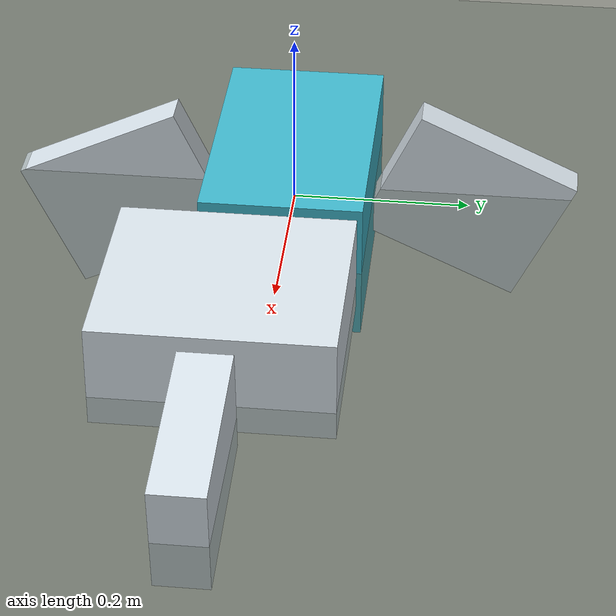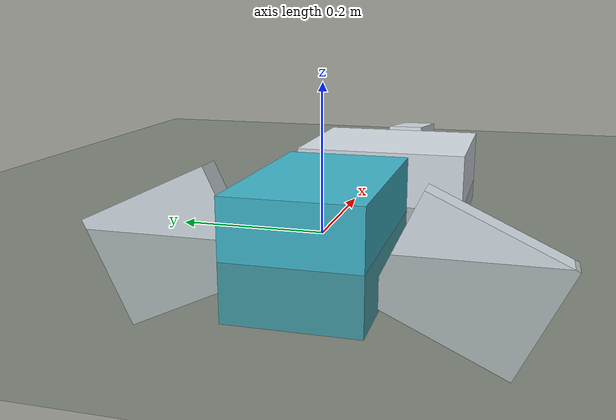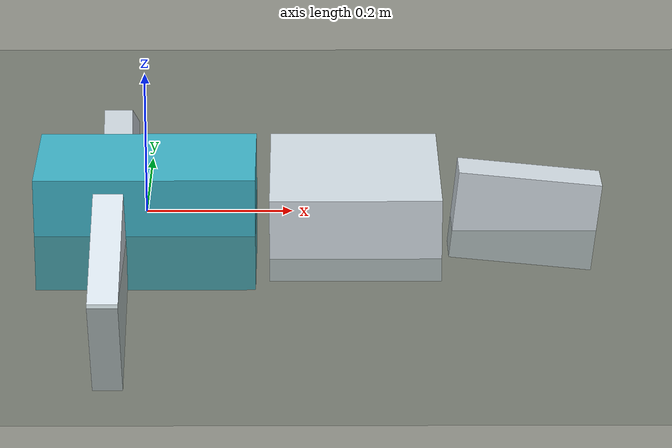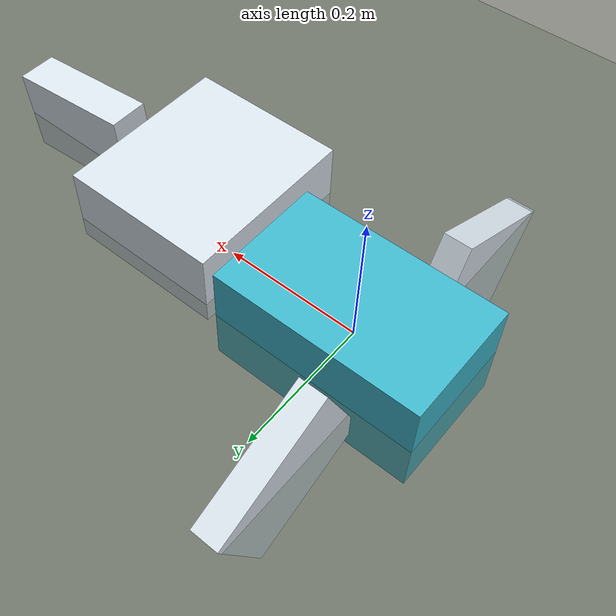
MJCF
<mujoco model="criatura">
  <compiler angle="degree" autolimits="true"/>
  <option timestep="0.002083" gravity="0 0 -9.81" integrator="implicitfast"/>
  <default>
    <geom type="box" density="300.0" rgba="0.85 0.89 0.92 1"/>
    <joint type="hinge"/>
    <motor ctrlrange="-1 1"/>
  </default>
  <worldbody>
    <geom name="suelo" type="plane" size="0 0 1" friction="1 0.005 0.0001" rgba="0.3 0.35 0.3 1"/>
    <body name="p0_n0" pos="0.00000 0.00000 0.00000" quat="1.000000 0.000000 0.000000 0.000000">
      <freejoint name="raiz"/>
      <geom name="g_p0_n0" size="0.15000 0.09000 0.08000" rgba="0.25 0.72 0.8 1"/>
      <body name="p1_n1" pos="0.28494 -0.04208 0.02418" quat="1.000000 0.000000 0.000000 0.000000">
        <joint name="p1_n1_j0" axis="0.0000 0.0000 1.0000" pos="-0.13494 0 0" range="-60.00 60.00" damping="0.4320"/>
        <geom name="g_p1_n1" size="0.11494 0.12778 0.05747"/>
        <body name="p2_n4" pos="0.23203 0.00000 -0.01198" quat="0.998701 0.000000 0.050947 0.000000">
          <joint name="p2_n4_j0" axis="1.0000 0.0000 0.0000" pos="-0.11770 0 0" range="-60.00 60.00" damping="0.1067"/>
          <joint name="p2_n4_j1" axis="0.0000 1.0000 0.0000" pos="-0.11770 0 0" range="-60.00 60.00" damping="0.1067"/>
          <joint name="p2_n4_j2" axis="0.0000 0.0000 1.0000" pos="-0.11770 0 0" range="-60.00 60.00" damping="0.1067"/>
          <geom name="g_p2_n4" size="0.09770 0.02872 0.06193"/>
        </body>
      </body>
      <body name="p3_n3" pos="-0.04500 0.19876 -0.01952" quat="0.596368 0.379928 0.596368 0.379928">
        <joint name="p3_n3_j0" axis="0.0000 1.0000 0.0000" pos="-0.12000 0 0" range="-40.00 40.00" damping="0.0971"/>
        <joint name="p3_n3_j1" axis="0.0000 0.0000 1.0000" pos="-0.12000 0 0" range="-40.00 40.00" damping="0.0971"/>
        <geom name="g_p3_n3" size="0.10000 0.08088 0.02000"/>
      </body>
      <body name="p4_n3" pos="-0.04500 -0.20031 -0.03544" quat="0.596368 -0.379928 0.596368 -0.379928">
        <joint name="p4_n3_j0" axis="0.0000 -1.0000 0.0000" pos="-0.12171 0 0" range="-40.00 40.00" damping="0.1004"/>
        <joint name="p4_n3_j1" axis="0.0000 0.0000 1.0000" pos="-0.12171 0 0" range="-40.00 40.00" damping="0.1004"/>
        <geom name="g_p4_n3" size="0.10171 0.08227 0.02034"/>
      </body>
    </body>
  </worldbody>
  <actuator>
    <motor name="m_p1_n1_j0" joint="p1_n1_j0" gear="8.6400"/>
    <motor name="m_p2_n4_j0" joint="p2_n4_j0" gear="2.1342"/>
    <motor name="m_p2_n4_j1" joint="p2_n4_j1" gear="2.1342"/>
    <motor name="m_p2_n4_j2" joint="p2_n4_j2" gear="2.1342"/>
    <motor name="m_p3_n3_j0" joint="p3_n3_j0" gear="1.9412"/>
    <motor name="m_p3_n3_j1" joint="p3_n3_j1" gear="1.9412"/>
    <motor name="m_p4_n3_j0" joint="p4_n3_j0" gear="-2.0083"/>
    <motor name="m_p4_n3_j1" joint="p4_n3_j1" gear="-2.0083"/>
  </actuator>
</mujoco>
